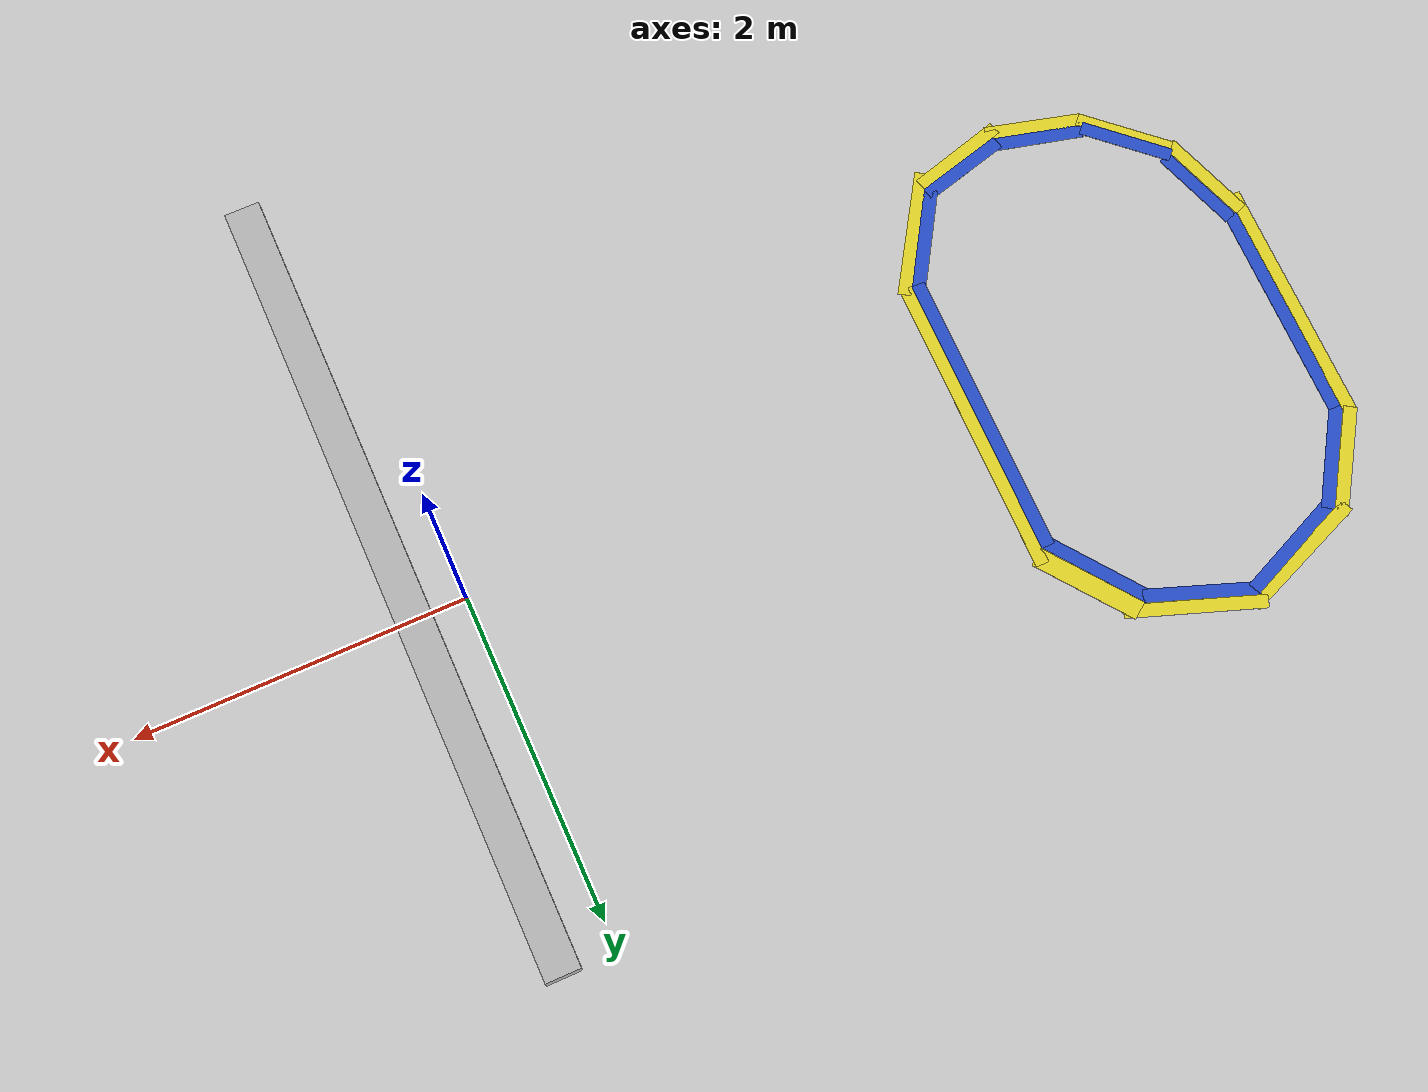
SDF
<sdf version="1.6">
 <world name="default">
  <scene><shadows>0</shadows><ambient>0.4 0.4 0.4 1</ambient><background>0.7 0.7 0.7 1</background></scene>
  <light name="sun" type="directional">
   <pose>0 0 10 0 -0 0</pose>
   <diffuse>0.8 0.8 0.8 1</diffuse>
   <specular>0.2 0.2 0.2 1</specular>
   <attenuation>
    <range>1000</range>
    <constant>0.9</constant>
    <linear>0.01</linear>
    <quadratic>0.001</quadratic>
   </attenuation>
   <direction>-0.5 0.1 -0.9</direction>
  </light>
  <light name="camera_spot_light" type="spot">
   <pose>14 -3 3 -1.55 -0 -1.62</pose>
   <diffuse>0.5 0.5 0.5 1</diffuse>
   <specular>0.1 0.1 0.1 1</specular>
   <direction>0 0 -1</direction>
   <attenuation>
    <range>50</range>
    <constant>0.5</constant>
    <linear>0.01</linear>
    <quadratic>0.001</quadratic>
   </attenuation>
   <cast_shadows>0</cast_shadows>
   <spot><inner_angle>0.6</inner_angle><outer_angle>1</outer_angle><falloff>1</falloff></spot>
  </light>
  <model name="deletion_wall">
   <static>1</static>
   <link name="sensing_link">
    <gravity>0</gravity>
    <sensor name="object_disposal_contact" type="contact">
     <update_rate>10</update_rate>
     <contact><collision>collision</collision><topic>__default_topic__</topic></contact>
    </sensor>
    <collision name="collision"><geometry><box><size>0.1 1 1</size></box></geometry></collision>
    <visual name="visual">
     <geometry><box><size>0.1 1 1</size></box></geometry>
     <cast_shadows>0</cast_shadows>
     <transparency>100</transparency>
    </visual>
   </link>
   <plugin name="object_disposal_plugin" filename="libObjectDisposalPlugin.so">
    <contact_sensor_name>object_disposal_contact</contact_sensor_name>
    <contact_side_normal>1 0 0</contact_side_normal>
    <disposal_pose>30 30 0 0 0 0</disposal_pose>
    <update_rate>5</update_rate>
   </plugin>
   <pose>1.2 -4.1 1.41 0 -0 1.5708</pose>
  </model>
  <model name="conveyor_belt">
   <model name="conveyor_belt_fixed">
    <static>1</static>
    <pose>1.15 4.2 0.35 0 0 -1.57079</pose>
    <link name="link"/>
   </model>
   <model name="conveyor_belt_moving">
    <allow_auto_disable>0</allow_auto_disable>
    <static>0</static>
    <pose>1.15 -4.12 0.35 0 0 -1.57079</pose>
    <link name="belt">
     <pose>-5 0 0 0 -0 0</pose>
     <inertial>
      <inertia><ixx>3.8185</ixx><ixy>0</ixy><ixz>0</ixz><iyy>1781.5</iyy><iyz>0</iyz><izz>1784.72</izz></inertia>
      <mass>100</mass>
     </inertial>
     <collision name="belt_collision">
      <geometry><box><size>14.6221 0.65461 0.18862</size></box></geometry>
      <surface>
       <friction>
        <ode><mu>1</mu><mu2>1</mu2></ode>
        <torsional><coefficient>1000</coefficient><patch_radius>0.1</patch_radius></torsional>
       </friction>
      </surface>
     </collision>
    </link>
   </model>
   <joint name="belt_joint" type="prismatic">
    <parent>conveyor_belt_fixed::link</parent>
    <child>conveyor_belt_moving::belt</child>
    <axis>
     <xyz>1 0 0</xyz>
     <limit><lower>0</lower><upper>1</upper></limit>
     <use_parent_model_frame>0</use_parent_model_frame>
     <dynamics><spring_reference>0</spring_reference><spring_stiffness>0</spring_stiffness></dynamics>
    </axis>
   </joint>
   <plugin name="conveyor_belt_plugin" filename="libROSConveyorBeltPlugin.so">
    <robot_namespace>/ariac</robot_namespace>
    <enable_topic>/ariac/conveyor_enable</enable_topic>
    <population_rate_modifier_topic>/ariac/population/rate_modifier</population_rate_modifier_topic>
    <link>conveyor_belt::conveyor_belt_moving::belt</link>
    <power>0</power>
    <update_rate>10</update_rate>
   </plugin>
   <pose>0.07 0.8 0.464 0 -0 0</pose>
  </model>
  <plugin name="populate_conveyor" filename="libROSPopulationPlugin.so">
   <activation_topic>/ariac/populate_belt</activation_topic>
   <rate_modifier_topic>/ariac/population/rate_modifier</rate_modifier_topic>
   <control_topic>/ariac/population/control</control_topic>
   <state_topic>/ariac/population/state</state_topic>
   <start_index>0</start_index>
   <prefix_object_names>0</prefix_object_names>
   <loop_forever>1</loop_forever>
   <frame>conveyor_belt::conveyor_belt_fixed</frame>
   <object_sequence>
    <object><time>1.0</time><type>piston_rod_part</type><pose>0.0 0.0 0.1 0.0 0.0 1.57079632679</pose></object>
    <object><time>5.0</time><type>gear_part</type><pose>0.0 0.0 0.1 0.0 0.0 1.57079632679</pose></object>
   </object_sequence>
   <update_rate>10</update_rate>
  </plugin>
  <plugin name="task_manager" filename="libROSAriacTaskManagerPlugin.so">
   <robot_namespace>ariac</robot_namespace>
   <competition_time_limit>-1</competition_time_limit>
   <start_competition_service_name>/ariac/start_competition</start_competition_service_name>
   <end_competition_service_name>/ariac/end_competition</end_competition_service_name>
   <population_activate_topic>/ariac/populate_belt</population_activate_topic>
   <conveyor_control_service>/ariac/conveyor/control</conveyor_control_service>
   <submit_tray_service_name>/ariac/submit_shipment</submit_tray_service_name>
   <material_locations_service_name>/ariac/material_locations</material_locations_service_name>
   <shipment_content_topic_name>/ariac/trays</shipment_content_topic_name>
   <orders_topic>/ariac/orders</orders_topic>
   <agv index="1">
    <agv_control_service_name>/ariac/agv1</agv_control_service_name>
    <agv_animate_service_name>/ariac/agv1/animate</agv_animate_service_name>
    <get_content_service_name>/ariac/kit_tray_1/get_content</get_content_service_name>
   </agv>
   <agv index="2">
    <agv_control_service_name>/ariac/agv2</agv_control_service_name>
    <agv_animate_service_name>/ariac/agv2/animate</agv_animate_service_name>
    <get_content_service_name>/ariac/kit_tray_2/get_content</get_content_service_name>
   </agv>
   <order>
    <name>order_0</name>
    <start_time>0.0</start_time>
    <shipment>
     <shipment_type>order_0_shipment_0</shipment_type>
     <destination>any</destination>
     <product><type>piston_rod_part</type><pose>0.1 -0.1 0.0 0.0 0.0 0.0</pose></product>
     <product><type>gear_part</type><pose>-0.1 0.0 0.0 0.0 0.0 3.14159265359</pose></product>
     <product><type>gear_part</type><pose>-0.1 0.15 0.0 0.0 0.0 0.0</pose></product>
    </shipment>
   </order>
   <material_locations>
    <material>
     <type>piston_rod_part</type>
     <location><storage_unit>bin2</storage_unit></location>
     <location><storage_unit>belt</storage_unit></location>
    </material>
    <material><type>gasket_part</type><location><storage_unit>bin4</storage_unit></location></material>
    <material>
     <type>gear_part</type>
     <location><storage_unit>bin3</storage_unit></location>
     <location><storage_unit>belt</storage_unit></location>
    </material>
   </material_locations>
   <update_rate>10</update_rate>
  </plugin>
  <model name="under_workcell_plane">
   <pose>0 0 -5.1 0 -0 0</pose>
   <static>1</static>
   <link name="link">
    <collision name="collision">
     <geometry><plane><normal>0 0 1</normal><size>25 25</size></plane></geometry>
     <surface><friction><ode><mu>100</mu><mu2>50</mu2></ode></friction></surface>
    </collision>
   </link>
  </model>
  <model name="ground_plane">
   <static>1</static>
   <pose>-50 50 -0.01 0 -0 0</pose>
   <link name="link">
    <visual name="visual">
     <cast_shadows>0</cast_shadows>
     <geometry><plane><normal>0 0 1</normal><size>150 150</size></plane></geometry>
     <material>
      <script><uri>file://media/materials/scripts/gazebo.material</uri><name>Gazebo/Grey</name></script>
     </material>
    </visual>
   </link>
  </model>
  <model name="linear_rail">
   <pose>0.3 0 0.9 0 -0 0</pose>
   <static>1</static>
   <link name="rail_link">
    <visual name="rail_link_visual">
     <geometry><box><size>0.2 4.6 0.1</size></box></geometry>
     <material><script><uri>__default__</uri><name>__default__</name></script></material>
    </visual>
    <collision name="rail_link_collision"><geometry><box><size>0.2 4.6 0.1</size></box></geometry></collision>
   </link>
  </model>
  <gravity>0 0 -9.8</gravity>
  <magnetic_field>6e-06 2.3e-05 -4.2e-05</magnetic_field>
  <atmosphere type="adiabatic"/>
  <physics name="default_physics" default="0" type="ode">
   <max_step_size>0.001</max_step_size>
   <real_time_factor>1</real_time_factor>
   <real_time_update_rate>1000</real_time_update_rate>
  </physics>
  <audio><device>default</device></audio>
  <spherical_coordinates>
   <surface_model>EARTH_WGS84</surface_model>
   <latitude_deg>0</latitude_deg>
   <longitude_deg>0</longitude_deg>
   <elevation>0</elevation>
   <heading_deg>0</heading_deg>
  </spherical_coordinates>
  <model name="gear_objects"/>
  <model name="lane_blue">
   <link name="main">
    <visual name="main_Visual">
     <geometry><box><size>0.08 1.7518 0.001</size></box></geometry>
     <material>
      <script><name>Gazebo/Blue</name><uri>file://media/materials/scripts/gazebo.material</uri></script>
     </material>
    </visual>
   </link>
   <static>1</static>
   <pose>-3.15051 0.184587 0 0 -0 0</pose>
  </model>
  <model name="lane_yellow">
   <link name="main">
    <visual name="main_Visual">
     <geometry><box><size>0.08 1.84297 0.001</size></box></geometry>
     <material>
      <script><name>Gazebo/Yellow</name><uri>file://media/materials/scripts/gazebo.material</uri></script>
     </material>
    </visual>
   </link>
   <static>1</static>
   <pose>-3.07277 0.225565 0 0 -0 0</pose>
  </model>
  <model name="lane_blue_short">
   <link name="main">
    <visual name="main_Visual">
     <geometry><box><size>0.08 0.637464 0.001</size></box></geometry>
     <material>
      <script><name>Gazebo/Blue</name><uri>file://media/materials/scripts/gazebo.material</uri></script>
     </material>
    </visual>
   </link>
   <static>1</static>
   <pose>-3.31043 -0.934943 0 0 0 -0.550849</pose>
  </model>
  <model name="lane_blue_short_0">
   <link name="main">
    <visual name="main_Visual">
     <geometry><box><size>0.08 0.544504 0.001</size></box></geometry>
     <material>
      <script><name>Gazebo/Blue</name><uri>file://media/materials/scripts/gazebo.material</uri></script>
     </material>
    </visual>
   </link>
   <static>1</static>
   <pose>-4.20577 -1.25504 0 0 -0 1.32582</pose>
  </model>
  <model name="lane_yellow_short">
   <link name="main">
    <visual name="main_Visual">
     <geometry><box><size>0.08 0.787437 0.001</size></box></geometry>
     <material>
      <script><name>Gazebo/Yellow</name><uri>file://media/materials/scripts/gazebo.material</uri></script>
     </material>
    </visual>
   </link>
   <static>1</static>
   <pose>-3.26123 -0.997337 0 0 0 -0.564448</pose>
  </model>
  <model name="lane_yellow_short_0">
   <link name="main">
    <visual name="main_Visual">
     <geometry><box><size>0.08 0.586014 0.001</size></box></geometry>
     <material>
      <script><name>Gazebo/Yellow</name><uri>file://media/materials/scripts/gazebo.material</uri></script>
     </material>
    </visual>
   </link>
   <static>1</static>
   <pose>-3.7171 -1.33819 0 0 -0 1.8438</pose>
  </model>
  <model name="lane_blue_0">
   <link name="main">
    <visual name="main_Visual">
     <geometry><box><size>0.08 1.32435 0.001</size></box></geometry>
     <material>
      <script><name>Gazebo/Blue</name><uri>file://media/materials/scripts/gazebo.material</uri></script>
     </material>
    </visual>
   </link>
   <static>1</static>
   <pose>-5.03573 0.323431 0 0 -0 0</pose>
  </model>
  <model name="lane_yellow_0">
   <link name="main">
    <visual name="main_Visual">
     <geometry><box><size>0.08 1.48869 0.001</size></box></geometry>
     <material>
      <script><name>Gazebo/Yellow</name><uri>file://media/materials/scripts/gazebo.material</uri></script>
     </material>
    </visual>
   </link>
   <static>1</static>
   <pose>-5.11074 0.291391 0 0 -0 0</pose>
  </model>
  <model name="lane_blue_short_clone">
   <link name="main">
    <visual name="main_Visual">
     <geometry><box><size>0.08 0.669834 0.001</size></box></geometry>
     <material>
      <script><name>Gazebo/Blue</name><uri>file://media/materials/scripts/gazebo.material</uri></script>
     </material>
    </visual>
   </link>
   <static>1</static>
   <pose>-4.41454 1.63061 0 0 0 -1.15166</pose>
  </model>
  <model name="lane_yellow_short_clone">
   <link name="main">
    <visual name="main_Visual">
     <geometry><box><size>0.08 0.827509 0.001</size></box></geometry>
     <material>
      <script><name>Gazebo/Yellow</name><uri>file://media/materials/scripts/gazebo.material</uri></script>
     </material>
    </visual>
   </link>
   <static>1</static>
   <pose>-3.75884 1.72217 0 0 0 -1.91173</pose>
  </model>
  <model name="lane_blue_short_clone_0">
   <link name="main">
    <visual name="main_Visual">
     <geometry><box><size>0.08 0.637958 0.001</size></box></geometry>
     <material>
      <script><name>Gazebo/Blue</name><uri>file://media/materials/scripts/gazebo.material</uri></script>
     </material>
    </visual>
   </link>
   <static>1</static>
   <pose>-4.88366 1.23946 0 0 0 -0.556862</pose>
  </model>
  <model name="lane_yellow_short_clone_0">
   <link name="main">
    <visual name="main_Visual">
     <geometry><box><size>0.08 0.666613 0.001</size></box></geometry>
     <material>
      <script><name>Gazebo/Yellow</name><uri>file://media/materials/scripts/gazebo.material</uri></script>
     </material>
    </visual>
   </link>
   <static>1</static>
   <pose>-4.94224 1.29818 0 0 0 -0.564448</pose>
  </model>
  <model name="lane_blue_short_clone_clone">
   <link name="main">
    <visual name="main_Visual">
     <geometry><box><size>0.08 0.669834 0.001</size></box></geometry>
     <material>
      <script><name>Gazebo/Blue</name><uri>file://media/materials/scripts/gazebo.material</uri></script>
     </material>
    </visual>
   </link>
   <static>1</static>
   <pose>-3.82494 1.66006 0 0 0 -1.91867</pose>
  </model>
  <model name="lane_blue_short_clone_clone_clone">
   <link name="main">
    <visual name="main_Visual">
     <geometry><box><size>0.08 0.669834 0.001</size></box></geometry>
     <material>
      <script><name>Gazebo/Blue</name><uri>file://media/materials/scripts/gazebo.material</uri></script>
     </material>
    </visual>
   </link>
   <static>1</static>
   <pose>-3.34355 1.30212 0 0 0 -2.49864</pose>
  </model>
  <model name="lane_blue_short_0_clone">
   <link name="main">
    <visual name="main_Visual">
     <geometry><box><size>0.08 0.544505 0.001</size></box></geometry>
     <material>
      <script><name>Gazebo/Blue</name><uri>file://media/materials/scripts/gazebo.material</uri></script>
     </material>
    </visual>
   </link>
   <static>1</static>
   <pose>-3.71158 -1.25655 0 0 -0 1.83004</pose>
  </model>
  <model name="lane_blue_short_0_clone_1">
   <link name="main">
    <visual name="main_Visual">
     <geometry><box><size>0.08 0.559169 0.001</size></box></geometry>
     <material>
      <script><name>Gazebo/Blue</name><uri>file://media/materials/scripts/gazebo.material</uri></script>
     </material>
    </visual>
   </link>
   <static>1</static>
   <pose>-4.66698 -1.00459 0.038714 0 -0 0.830858</pose>
  </model>
  <model name="lane_blue_short_0_clone_1_clone">
   <link name="main">
    <visual name="main_Visual">
     <geometry><box><size>0.08 0.544505 0.001</size></box></geometry>
     <material>
      <script><name>Gazebo/Blue</name><uri>file://media/materials/scripts/gazebo.material</uri></script>
     </material>
    </visual>
   </link>
   <static>1</static>
   <pose>-4.93644 -0.577676 0 0 -0 0.344159</pose>
  </model>
  <model name="lane_yellow_short_clone_clone">
   <link name="main">
    <visual name="main_Visual">
     <geometry><box><size>0.08 0.820829 0.001</size></box></geometry>
     <material>
      <script><name>Gazebo/Yellow</name><uri>file://media/materials/scripts/gazebo.material</uri></script>
     </material>
    </visual>
   </link>
   <static>1</static>
   <pose>-4.4448 1.69562 0 0 0 -1.17966</pose>
  </model>
  <model name="lane_yellow_short_clone_clone_0">
   <link name="main">
    <visual name="main_Visual">
     <geometry><box><size>0.115986 0.659995 0.001</size></box></geometry>
     <material>
      <script><name>Gazebo/Yellow</name><uri>file://media/materials/scripts/gazebo.material</uri></script>
     </material>
    </visual>
   </link>
   <static>1</static>
   <pose>-3.25876 1.35426 0 0 0 -2.493</pose>
  </model>
  <model name="lane_yellow_short_0_clone">
   <link name="main">
    <visual name="main_Visual">
     <geometry><box><size>0.08 0.586015 0.001</size></box></geometry>
     <material>
      <script><name>Gazebo/Yellow</name><uri>file://media/materials/scripts/gazebo.material</uri></script>
     </material>
    </visual>
   </link>
   <static>1</static>
   <pose>-4.21396 -1.33334 0 0 -0 1.31051</pose>
  </model>
  <model name="lane_yellow_short_0_clone_0">
   <link name="main">
    <visual name="main_Visual">
     <geometry><box><size>0.08 0.586015 0.001</size></box></geometry>
     <material>
      <script><name>Gazebo/Yellow</name><uri>file://media/materials/scripts/gazebo.material</uri></script>
     </material>
    </visual>
   </link>
   <static>1</static>
   <pose>-4.69394 -1.07037 0 0 -0 0.83292</pose>
  </model>
  <model name="lane_yellow_short_0_clone_1">
   <link name="main">
    <visual name="main_Visual">
     <geometry><box><size>0.08 0.586015 0.001</size></box></geometry>
     <material>
      <script><name>Gazebo/Yellow</name><uri>file://media/materials/scripts/gazebo.material</uri></script>
     </material>
    </visual>
   </link>
   <static>1</static>
   <pose>-5.00883 -0.621895 0 0 -0 0.345717</pose>
  </model>
 </world>
</sdf>
